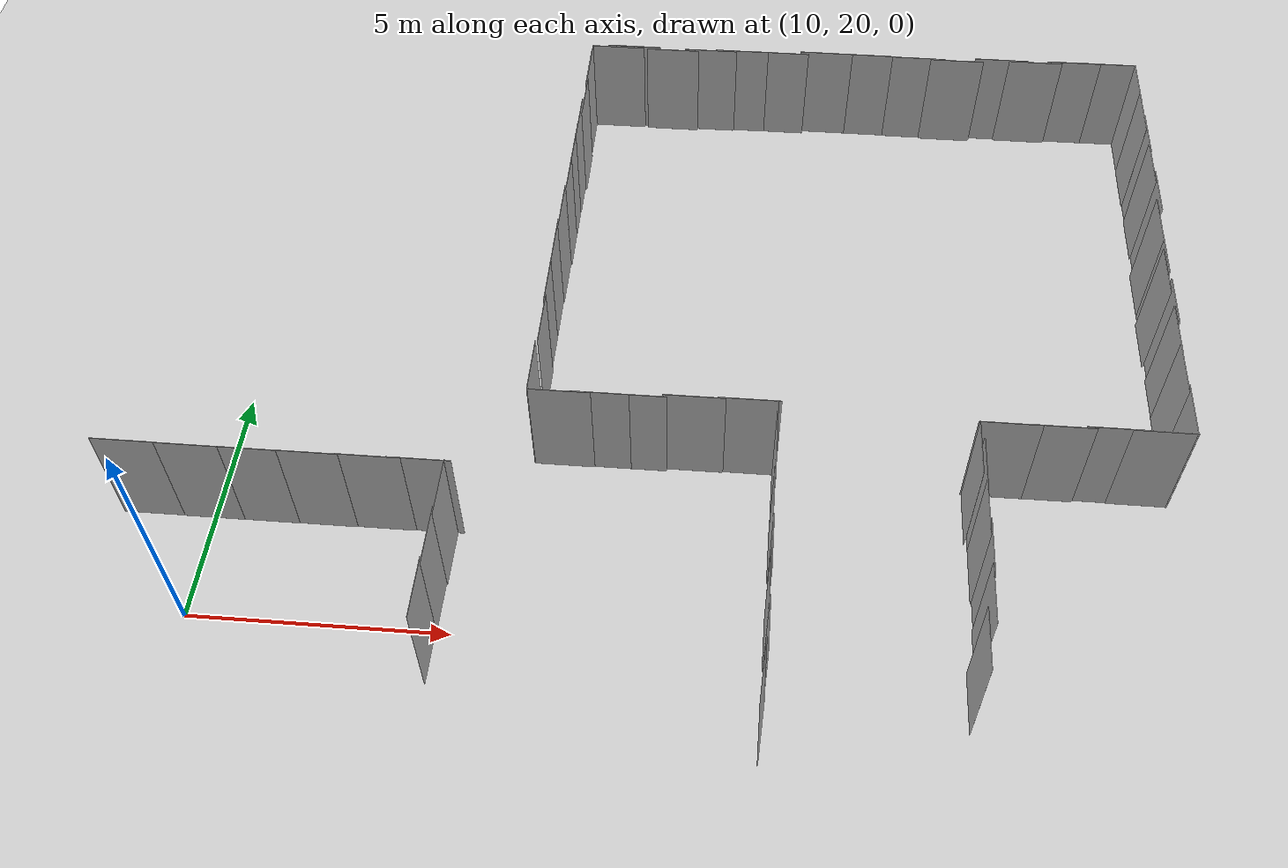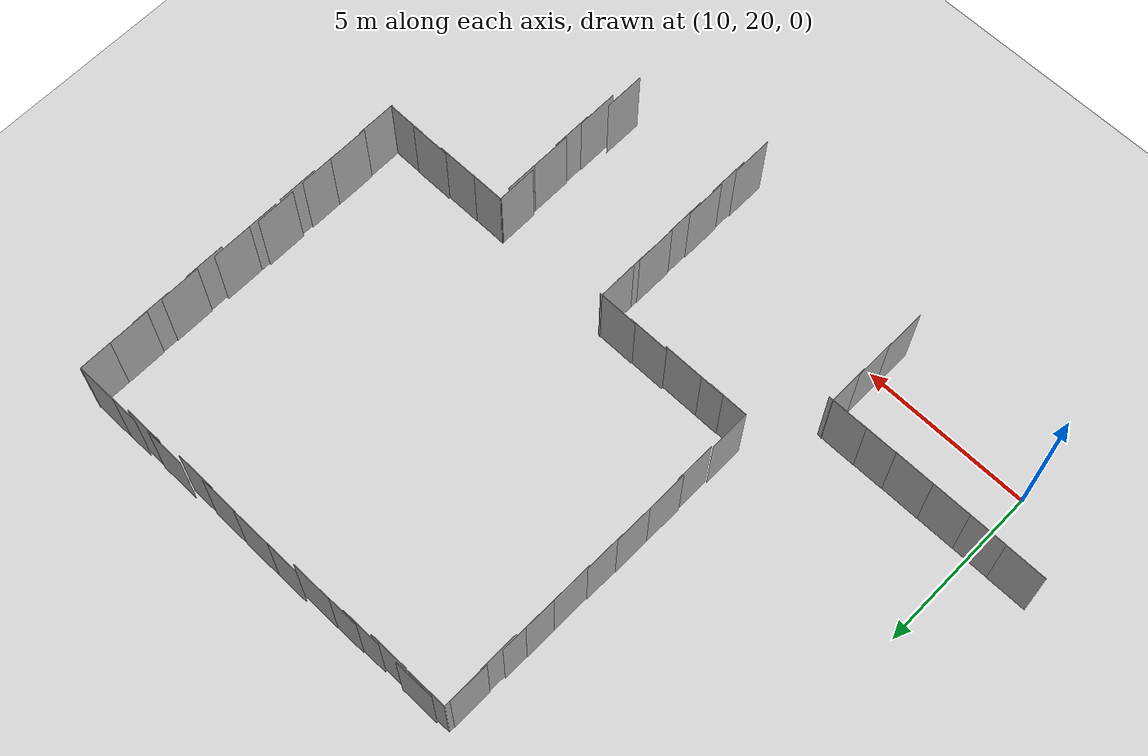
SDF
<sdf version="1.7">
 <world name="default">
  <model name="ground_plane">
   <static>1</static>
   <link name="link">
    <collision name="collision">
     <geometry><plane><normal>0 0 1</normal><size>100 100</size></plane></geometry>
     <surface><friction><ode><mu>100</mu><mu2>50</mu2></ode></friction></surface>
    </collision>
    <visual name="visual">
     <cast_shadows>0</cast_shadows>
     <geometry><plane><normal>0 0 1</normal><size>100 100</size></plane></geometry>
     <material>
      <script><uri>file://media/materials/scripts/gazebo.material</uri><name>Gazebo/Grey</name></script>
     </material>
    </visual>
   </link>
  </model>
  <model name="nist_maze_wall_240_clone_3_clone_5_clone_clone_0_clone_10_clone_1_clone_2_clone_1">
   <static>1</static>
   <link name="nist__maze_wall_240_link">
    <collision name="collision">
     <geometry>
      <mesh><uri>model://nist_maze_wall_240/meshes/nist_maze_wall_240.dae</uri><scale>1 1 1</scale></mesh>
     </geometry>
    </collision>
    <visual name="visual">
     <geometry>
      <mesh><uri>model://nist_maze_wall_240/meshes/nist_maze_wall_240.dae</uri><scale>1 1 1</scale></mesh>
     </geometry>
    </visual>
   </link>
   <pose>15.2926 19.5737 0 0 -0 1.57</pose>
  </model>
  <model name="nist_maze_wall_240_clone_3_clone_5_clone_clone_0_clone_10_clone_1_clone_2_clone_2">
   <static>1</static>
   <link name="nist__maze_wall_240_link">
    <collision name="collision">
     <geometry>
      <mesh><uri>model://nist_maze_wall_240/meshes/nist_maze_wall_240.dae</uri><scale>1 1 1</scale></mesh>
     </geometry>
    </collision>
    <visual name="visual">
     <geometry>
      <mesh><uri>model://nist_maze_wall_240/meshes/nist_maze_wall_240.dae</uri><scale>1 1 1</scale></mesh>
     </geometry>
    </visual>
   </link>
   <pose>15.3177 20.6411 0 0 -0 1.57</pose>
  </model>
  <model name="nist_maze_wall_240_clone_3_clone_5_clone_clone_0_clone_10_clone_1_clone_2_clone_3">
   <static>1</static>
   <link name="nist__maze_wall_240_link">
    <collision name="collision">
     <geometry>
      <mesh><uri>model://nist_maze_wall_240/meshes/nist_maze_wall_240.dae</uri><scale>1 1 1</scale></mesh>
     </geometry>
    </collision>
    <visual name="visual">
     <geometry>
      <mesh><uri>model://nist_maze_wall_240/meshes/nist_maze_wall_240.dae</uri><scale>1 1 1</scale></mesh>
     </geometry>
    </visual>
   </link>
   <pose>15.3419 21.6525 0 0 -0 1.57</pose>
  </model>
  <model name="nist_maze_wall_240_clone_3_clone_9_clone_clone_1">
   <static>1</static>
   <link name="nist__maze_wall_240_link">
    <collision name="collision">
     <geometry>
      <mesh><uri>model://nist_maze_wall_240/meshes/nist_maze_wall_240.dae</uri><scale>1 1 1</scale></mesh>
     </geometry>
    </collision>
    <visual name="visual">
     <geometry>
      <mesh><uri>model://nist_maze_wall_240/meshes/nist_maze_wall_240.dae</uri><scale>1 1 1</scale></mesh>
     </geometry>
    </visual>
   </link>
   <pose>14.2758 21.6142 0 0 -0 0</pose>
  </model>
  <model name="nist_maze_wall_240_clone_3_clone_9_clone_clone_2">
   <static>1</static>
   <link name="nist__maze_wall_240_link">
    <collision name="collision">
     <geometry>
      <mesh><uri>model://nist_maze_wall_240/meshes/nist_maze_wall_240.dae</uri><scale>1 1 1</scale></mesh>
     </geometry>
    </collision>
    <visual name="visual">
     <geometry>
      <mesh><uri>model://nist_maze_wall_240/meshes/nist_maze_wall_240.dae</uri><scale>1 1 1</scale></mesh>
     </geometry>
    </visual>
   </link>
   <pose>13.3441 21.6056 0 0 -0 0</pose>
  </model>
  <model name="nist_maze_wall_240_clone_3_clone_9_clone_clone_3">
   <static>1</static>
   <link name="nist__maze_wall_240_link">
    <collision name="collision">
     <geometry>
      <mesh><uri>model://nist_maze_wall_240/meshes/nist_maze_wall_240.dae</uri><scale>1 1 1</scale></mesh>
     </geometry>
    </collision>
    <visual name="visual">
     <geometry>
      <mesh><uri>model://nist_maze_wall_240/meshes/nist_maze_wall_240.dae</uri><scale>1 1 1</scale></mesh>
     </geometry>
    </visual>
   </link>
   <pose>12.1914 21.597 0 0 -0 0</pose>
  </model>
  <model name="nist_maze_wall_240_clone_3_clone_9_clone_clone_4">
   <static>1</static>
   <link name="nist__maze_wall_240_link">
    <collision name="collision">
     <geometry>
      <mesh><uri>model://nist_maze_wall_240/meshes/nist_maze_wall_240.dae</uri><scale>1 1 1</scale></mesh>
     </geometry>
    </collision>
    <visual name="visual">
     <geometry>
      <mesh><uri>model://nist_maze_wall_240/meshes/nist_maze_wall_240.dae</uri><scale>1 1 1</scale></mesh>
     </geometry>
    </visual>
   </link>
   <pose>11.0497 21.5927 0 0 -0 0</pose>
  </model>
  <model name="nist_maze_wall_240_clone_3_clone_9_clone_clone_5">
   <static>1</static>
   <link name="nist__maze_wall_240_link">
    <collision name="collision">
     <geometry>
      <mesh><uri>model://nist_maze_wall_240/meshes/nist_maze_wall_240.dae</uri><scale>1 1 1</scale></mesh>
     </geometry>
    </collision>
    <visual name="visual">
     <geometry>
      <mesh><uri>model://nist_maze_wall_240/meshes/nist_maze_wall_240.dae</uri><scale>1 1 1</scale></mesh>
     </geometry>
    </visual>
   </link>
   <pose>9.96574 21.5898 0 0 -0 0</pose>
  </model>
  <model name="nist_maze_wall_240_clone_3_clone_9_clone_clone_6">
   <static>1</static>
   <link name="nist__maze_wall_240_link">
    <collision name="collision">
     <geometry>
      <mesh><uri>model://nist_maze_wall_240/meshes/nist_maze_wall_240.dae</uri><scale>1 1 1</scale></mesh>
     </geometry>
    </collision>
    <visual name="visual">
     <geometry>
      <mesh><uri>model://nist_maze_wall_240/meshes/nist_maze_wall_240.dae</uri><scale>1 1 1</scale></mesh>
     </geometry>
    </visual>
   </link>
   <pose>8.76553 21.594 0 0 -0 0</pose>
  </model>
  <model name="nist_maze_wall_240_clone_3_clone_5_clone_clone_0_clone_13_clone_6_clone_3_clone_clone_3_clone_24">
   <static>1</static>
   <link name="nist__maze_wall_240_link">
    <collision name="collision">
     <geometry>
      <mesh><uri>model://nist_maze_wall_240/meshes/nist_maze_wall_240.dae</uri><scale>1 1 1</scale></mesh>
     </geometry>
    </collision>
    <visual name="visual">
     <geometry>
      <mesh><uri>model://nist_maze_wall_240/meshes/nist_maze_wall_240.dae</uri><scale>1 1 1</scale></mesh>
     </geometry>
    </visual>
   </link>
   <pose>21.3166 18.5017 0 0 -0 1.57</pose>
  </model>
  <model name="nist_maze_wall_240_clone_3_clone_5_clone_clone_0_clone_13_clone_6_clone_3_clone_clone_3_clone_25">
   <static>1</static>
   <link name="nist__maze_wall_240_link">
    <collision name="collision">
     <geometry>
      <mesh><uri>model://nist_maze_wall_240/meshes/nist_maze_wall_240.dae</uri><scale>1 1 1</scale></mesh>
     </geometry>
    </collision>
    <visual name="visual">
     <geometry>
      <mesh><uri>model://nist_maze_wall_240/meshes/nist_maze_wall_240.dae</uri><scale>1 1 1</scale></mesh>
     </geometry>
    </visual>
   </link>
   <pose>21.3514 19.361 0 0 -0 1.57</pose>
  </model>
  <model name="nist_maze_wall_240_clone_3_clone_5_clone_clone_0_clone_13_clone_6_clone_3_clone_clone_3_clone_26">
   <static>1</static>
   <link name="nist__maze_wall_240_link">
    <collision name="collision">
     <geometry>
      <mesh><uri>model://nist_maze_wall_240/meshes/nist_maze_wall_240.dae</uri><scale>1 1 1</scale></mesh>
     </geometry>
    </collision>
    <visual name="visual">
     <geometry>
      <mesh><uri>model://nist_maze_wall_240/meshes/nist_maze_wall_240.dae</uri><scale>1 1 1</scale></mesh>
     </geometry>
    </visual>
   </link>
   <pose>21.3269 20.2453 0 0 -0 1.57</pose>
  </model>
  <model name="nist_maze_wall_240_clone_3_clone_5_clone_clone_0_clone_13_clone_6_clone_3_clone_clone_3_clone_27">
   <static>1</static>
   <link name="nist__maze_wall_240_link">
    <collision name="collision">
     <geometry>
      <mesh><uri>model://nist_maze_wall_240/meshes/nist_maze_wall_240.dae</uri><scale>1 1 1</scale></mesh>
     </geometry>
    </collision>
    <visual name="visual">
     <geometry>
      <mesh><uri>model://nist_maze_wall_240/meshes/nist_maze_wall_240.dae</uri><scale>1 1 1</scale></mesh>
     </geometry>
    </visual>
   </link>
   <pose>21.3523 20.9992 0 0 -0 1.57</pose>
  </model>
  <model name="nist_maze_wall_240_clone_3_clone_5_clone_clone_0_clone_13_clone_6_clone_3_clone_clone_3_clone_28">
   <static>1</static>
   <link name="nist__maze_wall_240_link">
    <collision name="collision">
     <geometry>
      <mesh><uri>model://nist_maze_wall_240/meshes/nist_maze_wall_240.dae</uri><scale>1 1 1</scale></mesh>
     </geometry>
    </collision>
    <visual name="visual">
     <geometry>
      <mesh><uri>model://nist_maze_wall_240/meshes/nist_maze_wall_240.dae</uri><scale>1 1 1</scale></mesh>
     </geometry>
    </visual>
   </link>
   <pose>21.3363 22.0957 0 0 -0 1.57</pose>
  </model>
  <model name="nist_maze_wall_240_clone_3_clone_5_clone_clone_0_clone_13_clone_6_clone_3_clone_clone_3_clone_29">
   <static>1</static>
   <link name="nist__maze_wall_240_link">
    <collision name="collision">
     <geometry>
      <mesh><uri>model://nist_maze_wall_240/meshes/nist_maze_wall_240.dae</uri><scale>1 1 1</scale></mesh>
     </geometry>
    </collision>
    <visual name="visual">
     <geometry>
      <mesh><uri>model://nist_maze_wall_240/meshes/nist_maze_wall_240.dae</uri><scale>1 1 1</scale></mesh>
     </geometry>
    </visual>
   </link>
   <pose>21.3496 22.9187 0 0 -0 1.57</pose>
  </model>
  <model name="nist_maze_wall_240_clone_3_clone_5_clone_clone_0_clone_13_clone_6_clone_3_clone_clone_3_clone_0_clone_29">
   <static>1</static>
   <link name="nist__maze_wall_240_link">
    <collision name="collision">
     <geometry>
      <mesh><uri>model://nist_maze_wall_240/meshes/nist_maze_wall_240.dae</uri><scale>1 1 1</scale></mesh>
     </geometry>
    </collision>
    <visual name="visual">
     <geometry>
      <mesh><uri>model://nist_maze_wall_240/meshes/nist_maze_wall_240.dae</uri><scale>1 1 1</scale></mesh>
     </geometry>
    </visual>
   </link>
   <pose>25.0086 19.3708 0 0 -0 1.57</pose>
  </model>
  <model name="nist_maze_wall_240_clone_3_clone_5_clone_clone_0_clone_13_clone_6_clone_3_clone_clone_3_clone_0_clone_30">
   <static>1</static>
   <link name="nist__maze_wall_240_link">
    <collision name="collision">
     <geometry>
      <mesh><uri>model://nist_maze_wall_240/meshes/nist_maze_wall_240.dae</uri><scale>1 1 1</scale></mesh>
     </geometry>
    </collision>
    <visual name="visual">
     <geometry>
      <mesh><uri>model://nist_maze_wall_240/meshes/nist_maze_wall_240.dae</uri><scale>1 1 1</scale></mesh>
     </geometry>
    </visual>
   </link>
   <pose>25.1456 20.2466 0 0 -0 1.57</pose>
  </model>
  <model name="nist_maze_wall_240_clone_3_clone_5_clone_clone_0_clone_13_clone_6_clone_3_clone_clone_3_clone_0_clone_31">
   <static>1</static>
   <link name="nist__maze_wall_240_link">
    <collision name="collision">
     <geometry>
      <mesh><uri>model://nist_maze_wall_240/meshes/nist_maze_wall_240.dae</uri><scale>1 1 1</scale></mesh>
     </geometry>
    </collision>
    <visual name="visual">
     <geometry>
      <mesh><uri>model://nist_maze_wall_240/meshes/nist_maze_wall_240.dae</uri><scale>1 1 1</scale></mesh>
     </geometry>
    </visual>
   </link>
   <pose>25.1681 21.1717 0 0 -0 1.57</pose>
  </model>
  <model name="nist_maze_wall_240_clone_3_clone_5_clone_clone_0_clone_13_clone_6_clone_3_clone_clone_3_clone_0_clone_32">
   <static>1</static>
   <link name="nist__maze_wall_240_link">
    <collision name="collision">
     <geometry>
      <mesh><uri>model://nist_maze_wall_240/meshes/nist_maze_wall_240.dae</uri><scale>1 1 1</scale></mesh>
     </geometry>
    </collision>
    <visual name="visual">
     <geometry>
      <mesh><uri>model://nist_maze_wall_240/meshes/nist_maze_wall_240.dae</uri><scale>1 1 1</scale></mesh>
     </geometry>
    </visual>
   </link>
   <pose>25.1414 21.9977 0 0 -0 1.57</pose>
  </model>
  <model name="nist_maze_wall_240_clone_3_clone_5_clone_clone_0_clone_13_clone_6_clone_3_clone_clone_3_clone_0_clone_33">
   <static>1</static>
   <link name="nist__maze_wall_240_link">
    <collision name="collision">
     <geometry>
      <mesh><uri>model://nist_maze_wall_240/meshes/nist_maze_wall_240.dae</uri><scale>1 1 1</scale></mesh>
     </geometry>
    </collision>
    <visual name="visual">
     <geometry>
      <mesh><uri>model://nist_maze_wall_240/meshes/nist_maze_wall_240.dae</uri><scale>1 1 1</scale></mesh>
     </geometry>
    </visual>
   </link>
   <pose>25.1446 22.9318 0 0 -0 1.57</pose>
  </model>
  <model name="nist_maze_wall_240_clone_3_clone_5_clone_clone_0_clone_13_clone_6_clone_3_clone_clone_3_clone_0_clone_34">
   <static>1</static>
   <link name="nist__maze_wall_240_link">
    <collision name="collision">
     <geometry>
      <mesh><uri>model://nist_maze_wall_240/meshes/nist_maze_wall_240.dae</uri><scale>1 1 1</scale></mesh>
     </geometry>
    </collision>
    <visual name="visual">
     <geometry>
      <mesh><uri>model://nist_maze_wall_240/meshes/nist_maze_wall_240.dae</uri><scale>1 1 1</scale></mesh>
     </geometry>
    </visual>
   </link>
   <pose>21.3445 23.503 0 0 -0 1.57</pose>
  </model>
  <model name="nist_maze_wall_240_clone_3_clone_5_clone_clone_0_clone_13_clone_6_clone_3_clone_clone_3_clone_29_clone">
   <static>1</static>
   <link name="nist__maze_wall_240_link">
    <collision name="collision">
     <geometry>
      <mesh><uri>model://nist_maze_wall_240/meshes/nist_maze_wall_240.dae</uri><scale>1 1 1</scale></mesh>
     </geometry>
    </collision>
    <visual name="visual">
     <geometry>
      <mesh><uri>model://nist_maze_wall_240/meshes/nist_maze_wall_240.dae</uri><scale>1 1 1</scale></mesh>
     </geometry>
    </visual>
   </link>
   <pose>25.0818 23.3065 0 0 -0 1.57</pose>
  </model>
  <model name="nist_maze_wall_240_clone_3_clone_9_clone_clone_2_clone">
   <static>1</static>
   <link name="nist__maze_wall_240_link">
    <collision name="collision">
     <geometry>
      <mesh><uri>model://nist_maze_wall_240/meshes/nist_maze_wall_240.dae</uri><scale>1 1 1</scale></mesh>
     </geometry>
    </collision>
    <visual name="visual">
     <geometry>
      <mesh><uri>model://nist_maze_wall_240/meshes/nist_maze_wall_240.dae</uri><scale>1 1 1</scale></mesh>
     </geometry>
    </visual>
   </link>
   <pose>20.2114 23.4638 0 0 -0 0</pose>
  </model>
  <model name="nist_maze_wall_240_clone_3_clone_9_clone_clone_2_clone_0">
   <static>1</static>
   <link name="nist__maze_wall_240_link">
    <collision name="collision">
     <geometry>
      <mesh><uri>model://nist_maze_wall_240/meshes/nist_maze_wall_240.dae</uri><scale>1 1 1</scale></mesh>
     </geometry>
    </collision>
    <visual name="visual">
     <geometry>
      <mesh><uri>model://nist_maze_wall_240/meshes/nist_maze_wall_240.dae</uri><scale>1 1 1</scale></mesh>
     </geometry>
    </visual>
   </link>
   <pose>19.1648 23.4464 0 0 -0 0</pose>
  </model>
  <model name="nist_maze_wall_240_clone_3_clone_9_clone_clone_2_clone_1">
   <static>1</static>
   <link name="nist__maze_wall_240_link">
    <collision name="collision">
     <geometry>
      <mesh><uri>model://nist_maze_wall_240/meshes/nist_maze_wall_240.dae</uri><scale>1 1 1</scale></mesh>
     </geometry>
    </collision>
    <visual name="visual">
     <geometry>
      <mesh><uri>model://nist_maze_wall_240/meshes/nist_maze_wall_240.dae</uri><scale>1 1 1</scale></mesh>
     </geometry>
    </visual>
   </link>
   <pose>18.0465 23.3916 0 0 -0 0</pose>
  </model>
  <model name="nist_maze_wall_240_clone_3_clone_9_clone_clone_2_clone_2">
   <static>1</static>
   <link name="nist__maze_wall_240_link">
    <collision name="collision">
     <geometry>
      <mesh><uri>model://nist_maze_wall_240/meshes/nist_maze_wall_240.dae</uri><scale>1 1 1</scale></mesh>
     </geometry>
    </collision>
    <visual name="visual">
     <geometry>
      <mesh><uri>model://nist_maze_wall_240/meshes/nist_maze_wall_240.dae</uri><scale>1 1 1</scale></mesh>
     </geometry>
    </visual>
   </link>
   <pose>17.3475 23.391 0 0 -0 0</pose>
  </model>
  <model name="nist_maze_wall_240_clone_3_clone_9_clone_clone_2_clone_3">
   <static>1</static>
   <link name="nist__maze_wall_240_link">
    <collision name="collision">
     <geometry>
      <mesh><uri>model://nist_maze_wall_240/meshes/nist_maze_wall_240.dae</uri><scale>1 1 1</scale></mesh>
     </geometry>
    </collision>
    <visual name="visual">
     <geometry>
      <mesh><uri>model://nist_maze_wall_240/meshes/nist_maze_wall_240.dae</uri><scale>1 1 1</scale></mesh>
     </geometry>
    </visual>
   </link>
   <pose>16.6119 23.3768 0 0 -0 0</pose>
  </model>
  <model name="nist_maze_wall_240_clone_3_clone_9_clone_clone_2_clone_clone">
   <static>1</static>
   <link name="nist__maze_wall_240_link">
    <collision name="collision">
     <geometry>
      <mesh><uri>model://nist_maze_wall_240/meshes/nist_maze_wall_240.dae</uri><scale>1 1 1</scale></mesh>
     </geometry>
    </collision>
    <visual name="visual">
     <geometry>
      <mesh><uri>model://nist_maze_wall_240/meshes/nist_maze_wall_240.dae</uri><scale>1 1 1</scale></mesh>
     </geometry>
    </visual>
   </link>
   <pose>25.0534 23.2846 0 0 -0 0</pose>
  </model>
  <model name="nist_maze_wall_240_clone_3_clone_9_clone_clone_2_clone_clone_0">
   <static>1</static>
   <link name="nist__maze_wall_240_link">
    <collision name="collision">
     <geometry>
      <mesh><uri>model://nist_maze_wall_240/meshes/nist_maze_wall_240.dae</uri><scale>1 1 1</scale></mesh>
     </geometry>
    </collision>
    <visual name="visual">
     <geometry>
      <mesh><uri>model://nist_maze_wall_240/meshes/nist_maze_wall_240.dae</uri><scale>1 1 1</scale></mesh>
     </geometry>
    </visual>
   </link>
   <pose>26.0408 23.2896 0 0 -0 0</pose>
  </model>
  <model name="nist_maze_wall_240_clone_3_clone_9_clone_clone_2_clone_clone_1">
   <static>1</static>
   <link name="nist__maze_wall_240_link">
    <collision name="collision">
     <geometry>
      <mesh><uri>model://nist_maze_wall_240/meshes/nist_maze_wall_240.dae</uri><scale>1 1 1</scale></mesh>
     </geometry>
    </collision>
    <visual name="visual">
     <geometry>
      <mesh><uri>model://nist_maze_wall_240/meshes/nist_maze_wall_240.dae</uri><scale>1 1 1</scale></mesh>
     </geometry>
    </visual>
   </link>
   <pose>27.0386 23.3221 0 0 -0 0</pose>
  </model>
  <model name="nist_maze_wall_240_clone_3_clone_9_clone_clone_2_clone_clone_2">
   <static>1</static>
   <link name="nist__maze_wall_240_link">
    <collision name="collision">
     <geometry>
      <mesh><uri>model://nist_maze_wall_240/meshes/nist_maze_wall_240.dae</uri><scale>1 1 1</scale></mesh>
     </geometry>
    </collision>
    <visual name="visual">
     <geometry>
      <mesh><uri>model://nist_maze_wall_240/meshes/nist_maze_wall_240.dae</uri><scale>1 1 1</scale></mesh>
     </geometry>
    </visual>
   </link>
   <pose>27.8874 23.3103 0 0 -0 0</pose>
  </model>
  <model name="nist_maze_wall_240_clone_3_clone_5_clone_clone_0_clone_13_clone_6_clone_3_clone_clone_3_clone_0_clone_33_clone">
   <static>1</static>
   <link name="nist__maze_wall_240_link">
    <collision name="collision">
     <geometry>
      <mesh><uri>model://nist_maze_wall_240/meshes/nist_maze_wall_240.dae</uri><scale>1 1 1</scale></mesh>
     </geometry>
    </collision>
    <visual name="visual">
     <geometry>
      <mesh><uri>model://nist_maze_wall_240/meshes/nist_maze_wall_240.dae</uri><scale>1 1 1</scale></mesh>
     </geometry>
    </visual>
   </link>
   <pose>29.0632 24.4699 0 0 -0 1.57</pose>
  </model>
  <model name="nist_maze_wall_240_clone_3_clone_5_clone_clone_0_clone_13_clone_6_clone_3_clone_clone_3_clone_0_clone_33_clone_0">
   <static>1</static>
   <link name="nist__maze_wall_240_link">
    <collision name="collision">
     <geometry>
      <mesh><uri>model://nist_maze_wall_240/meshes/nist_maze_wall_240.dae</uri><scale>1 1 1</scale></mesh>
     </geometry>
    </collision>
    <visual name="visual">
     <geometry>
      <mesh><uri>model://nist_maze_wall_240/meshes/nist_maze_wall_240.dae</uri><scale>1 1 1</scale></mesh>
     </geometry>
    </visual>
   </link>
   <pose>29.0393 25.4969 0 0 -0 1.57</pose>
  </model>
  <model name="nist_maze_wall_240_clone_3_clone_5_clone_clone_0_clone_13_clone_6_clone_3_clone_clone_3_clone_0_clone_33_clone_1">
   <static>1</static>
   <link name="nist__maze_wall_240_link">
    <collision name="collision">
     <geometry>
      <mesh><uri>model://nist_maze_wall_240/meshes/nist_maze_wall_240.dae</uri><scale>1 1 1</scale></mesh>
     </geometry>
    </collision>
    <visual name="visual">
     <geometry>
      <mesh><uri>model://nist_maze_wall_240/meshes/nist_maze_wall_240.dae</uri><scale>1 1 1</scale></mesh>
     </geometry>
    </visual>
   </link>
   <pose>29.0459 26.475 0 0 -0 1.57</pose>
  </model>
  <model name="nist_maze_wall_240_clone_3_clone_5_clone_clone_0_clone_13_clone_6_clone_3_clone_clone_3_clone_0_clone_33_clone_2">
   <static>1</static>
   <link name="nist__maze_wall_240_link">
    <collision name="collision">
     <geometry>
      <mesh><uri>model://nist_maze_wall_240/meshes/nist_maze_wall_240.dae</uri><scale>1 1 1</scale></mesh>
     </geometry>
    </collision>
    <visual name="visual">
     <geometry>
      <mesh><uri>model://nist_maze_wall_240/meshes/nist_maze_wall_240.dae</uri><scale>1 1 1</scale></mesh>
     </geometry>
    </visual>
   </link>
   <pose>29.0882 27.2129 0 0 -0 1.57</pose>
  </model>
  <model name="nist_maze_wall_240_clone_3_clone_5_clone_clone_0_clone_13_clone_6_clone_3_clone_clone_3_clone_0_clone_33_clone_3">
   <static>1</static>
   <link name="nist__maze_wall_240_link">
    <collision name="collision">
     <geometry>
      <mesh><uri>model://nist_maze_wall_240/meshes/nist_maze_wall_240.dae</uri><scale>1 1 1</scale></mesh>
     </geometry>
    </collision>
    <visual name="visual">
     <geometry>
      <mesh><uri>model://nist_maze_wall_240/meshes/nist_maze_wall_240.dae</uri><scale>1 1 1</scale></mesh>
     </geometry>
    </visual>
   </link>
   <pose>29.0304 28.024 0 0 -0 1.57</pose>
  </model>
  <model name="nist_maze_wall_240_clone_3_clone_5_clone_clone_0_clone_13_clone_6_clone_3_clone_clone_3_clone_0_clone_33_clone_4">
   <static>1</static>
   <link name="nist__maze_wall_240_link">
    <collision name="collision">
     <geometry>
      <mesh><uri>model://nist_maze_wall_240/meshes/nist_maze_wall_240.dae</uri><scale>1 1 1</scale></mesh>
     </geometry>
    </collision>
    <visual name="visual">
     <geometry>
      <mesh><uri>model://nist_maze_wall_240/meshes/nist_maze_wall_240.dae</uri><scale>1 1 1</scale></mesh>
     </geometry>
    </visual>
   </link>
   <pose>29.0759 28.5637 0 0 -0 1.57</pose>
  </model>
  <model name="nist_maze_wall_240_clone_3_clone_5_clone_clone_0_clone_13_clone_6_clone_3_clone_clone_3_clone_0_clone_33_clone_5">
   <static>1</static>
   <link name="nist__maze_wall_240_link">
    <collision name="collision">
     <geometry>
      <mesh><uri>model://nist_maze_wall_240/meshes/nist_maze_wall_240.dae</uri><scale>1 1 1</scale></mesh>
     </geometry>
    </collision>
    <visual name="visual">
     <geometry>
      <mesh><uri>model://nist_maze_wall_240/meshes/nist_maze_wall_240.dae</uri><scale>1 1 1</scale></mesh>
     </geometry>
    </visual>
   </link>
   <pose>29.0762 29.4673 0 0 -0 1.57</pose>
  </model>
  <model name="nist_maze_wall_240_clone_3_clone_5_clone_clone_0_clone_13_clone_6_clone_3_clone_clone_3_clone_0_clone_33_clone_6">
   <static>1</static>
   <link name="nist__maze_wall_240_link">
    <collision name="collision">
     <geometry>
      <mesh><uri>model://nist_maze_wall_240/meshes/nist_maze_wall_240.dae</uri><scale>1 1 1</scale></mesh>
     </geometry>
    </collision>
    <visual name="visual">
     <geometry>
      <mesh><uri>model://nist_maze_wall_240/meshes/nist_maze_wall_240.dae</uri><scale>1 1 1</scale></mesh>
     </geometry>
    </visual>
   </link>
   <pose>29.1545 30.3459 0 0 -0 1.57</pose>
  </model>
  <model name="nist_maze_wall_240_clone_3_clone_5_clone_clone_0_clone_13_clone_6_clone_3_clone_clone_3_clone_0_clone_33_clone_7">
   <static>1</static>
   <link name="nist__maze_wall_240_link">
    <collision name="collision">
     <geometry>
      <mesh><uri>model://nist_maze_wall_240/meshes/nist_maze_wall_240.dae</uri><scale>1 1 1</scale></mesh>
     </geometry>
    </collision>
    <visual name="visual">
     <geometry>
      <mesh><uri>model://nist_maze_wall_240/meshes/nist_maze_wall_240.dae</uri><scale>1 1 1</scale></mesh>
     </geometry>
    </visual>
   </link>
   <pose>29.1283 31.1875 0 0 -0 1.57</pose>
  </model>
  <model name="nist_maze_wall_240_clone_3_clone_5_clone_clone_0_clone_13_clone_6_clone_3_clone_clone_3_clone_0_clone_33_clone_8">
   <static>1</static>
   <link name="nist__maze_wall_240_link">
    <collision name="collision">
     <geometry>
      <mesh><uri>model://nist_maze_wall_240/meshes/nist_maze_wall_240.dae</uri><scale>1 1 1</scale></mesh>
     </geometry>
    </collision>
    <visual name="visual">
     <geometry>
      <mesh><uri>model://nist_maze_wall_240/meshes/nist_maze_wall_240.dae</uri><scale>1 1 1</scale></mesh>
     </geometry>
    </visual>
   </link>
   <pose>29.1465 32.1184 0 0 -0 1.57</pose>
  </model>
  <model name="nist_maze_wall_240_clone_3_clone_5_clone_clone_0_clone_13_clone_6_clone_3_clone_clone_3_clone_0_clone_33_clone_9">
   <static>1</static>
   <link name="nist__maze_wall_240_link">
    <collision name="collision">
     <geometry>
      <mesh><uri>model://nist_maze_wall_240/meshes/nist_maze_wall_240.dae</uri><scale>1 1 1</scale></mesh>
     </geometry>
    </collision>
    <visual name="visual">
     <geometry>
      <mesh><uri>model://nist_maze_wall_240/meshes/nist_maze_wall_240.dae</uri><scale>1 1 1</scale></mesh>
     </geometry>
    </visual>
   </link>
   <pose>29.131 32.8545 0 0 -0 1.57</pose>
  </model>
  <model name="nist_maze_wall_240_clone_3_clone_5_clone_clone_0_clone_13_clone_6_clone_3_clone_clone_3_clone_0_clone_33_clone_10">
   <static>1</static>
   <link name="nist__maze_wall_240_link">
    <collision name="collision">
     <geometry>
      <mesh><uri>model://nist_maze_wall_240/meshes/nist_maze_wall_240.dae</uri><scale>1 1 1</scale></mesh>
     </geometry>
    </collision>
    <visual name="visual">
     <geometry>
      <mesh><uri>model://nist_maze_wall_240/meshes/nist_maze_wall_240.dae</uri><scale>1 1 1</scale></mesh>
     </geometry>
    </visual>
   </link>
   <pose>29.1368 33.8279 0 0 -0 1.57</pose>
  </model>
  <model name="nist_maze_wall_240_clone_3_clone_5_clone_clone_0_clone_13_clone_6_clone_3_clone_clone_3_clone_0_clone_33_clone_11">
   <static>1</static>
   <link name="nist__maze_wall_240_link">
    <collision name="collision">
     <geometry>
      <mesh><uri>model://nist_maze_wall_240/meshes/nist_maze_wall_240.dae</uri><scale>1 1 1</scale></mesh>
     </geometry>
    </collision>
    <visual name="visual">
     <geometry>
      <mesh><uri>model://nist_maze_wall_240/meshes/nist_maze_wall_240.dae</uri><scale>1 1 1</scale></mesh>
     </geometry>
    </visual>
   </link>
   <pose>16.6069 24.5638 0 0 -0 1.57</pose>
  </model>
  <model name="nist_maze_wall_240_clone_3_clone_5_clone_clone_0_clone_13_clone_6_clone_3_clone_clone_3_clone_0_clone_33_clone_12">
   <static>1</static>
   <link name="nist__maze_wall_240_link">
    <collision name="collision">
     <geometry>
      <mesh><uri>model://nist_maze_wall_240/meshes/nist_maze_wall_240.dae</uri><scale>1 1 1</scale></mesh>
     </geometry>
    </collision>
    <visual name="visual">
     <geometry>
      <mesh><uri>model://nist_maze_wall_240/meshes/nist_maze_wall_240.dae</uri><scale>1 1 1</scale></mesh>
     </geometry>
    </visual>
   </link>
   <pose>16.6487 25.7636 0 0 -0 1.57</pose>
  </model>
  <model name="nist_maze_wall_240_clone_3_clone_5_clone_clone_0_clone_13_clone_6_clone_3_clone_clone_3_clone_0_clone_33_clone_13">
   <static>1</static>
   <link name="nist__maze_wall_240_link">
    <collision name="collision">
     <geometry>
      <mesh><uri>model://nist_maze_wall_240/meshes/nist_maze_wall_240.dae</uri><scale>1 1 1</scale></mesh>
     </geometry>
    </collision>
    <visual name="visual">
     <geometry>
      <mesh><uri>model://nist_maze_wall_240/meshes/nist_maze_wall_240.dae</uri><scale>1 1 1</scale></mesh>
     </geometry>
    </visual>
   </link>
   <pose>16.626 26.7719 0 0 -0 1.57</pose>
  </model>
  <model name="nist_maze_wall_240_clone_3_clone_5_clone_clone_0_clone_13_clone_6_clone_3_clone_clone_3_clone_0_clone_33_clone_14">
   <static>1</static>
   <link name="nist__maze_wall_240_link">
    <collision name="collision">
     <geometry>
      <mesh><uri>model://nist_maze_wall_240/meshes/nist_maze_wall_240.dae</uri><scale>1 1 1</scale></mesh>
     </geometry>
    </collision>
    <visual name="visual">
     <geometry>
      <mesh><uri>model://nist_maze_wall_240/meshes/nist_maze_wall_240.dae</uri><scale>1 1 1</scale></mesh>
     </geometry>
    </visual>
   </link>
   <pose>16.6273 27.8794 0 0 -0 1.57</pose>
  </model>
  <model name="nist_maze_wall_240_clone_3_clone_5_clone_clone_0_clone_13_clone_6_clone_3_clone_clone_3_clone_0_clone_33_clone_15">
   <static>1</static>
   <link name="nist__maze_wall_240_link">
    <collision name="collision">
     <geometry>
      <mesh><uri>model://nist_maze_wall_240/meshes/nist_maze_wall_240.dae</uri><scale>1 1 1</scale></mesh>
     </geometry>
    </collision>
    <visual name="visual">
     <geometry>
      <mesh><uri>model://nist_maze_wall_240/meshes/nist_maze_wall_240.dae</uri><scale>1 1 1</scale></mesh>
     </geometry>
    </visual>
   </link>
   <pose>16.6471 28.8787 0 0 -0 1.57</pose>
  </model>
  <model name="nist_maze_wall_240_clone_3_clone_5_clone_clone_0_clone_13_clone_6_clone_3_clone_clone_3_clone_0_clone_33_clone_16">
   <static>1</static>
   <link name="nist__maze_wall_240_link">
    <collision name="collision">
     <geometry>
      <mesh><uri>model://nist_maze_wall_240/meshes/nist_maze_wall_240.dae</uri><scale>1 1 1</scale></mesh>
     </geometry>
    </collision>
    <visual name="visual">
     <geometry>
      <mesh><uri>model://nist_maze_wall_240/meshes/nist_maze_wall_240.dae</uri><scale>1 1 1</scale></mesh>
     </geometry>
    </visual>
   </link>
   <pose>16.6752 29.9908 0 0 -0 1.57</pose>
  </model>
  <model name="nist_maze_wall_240_clone_3_clone_5_clone_clone_0_clone_13_clone_6_clone_3_clone_clone_3_clone_0_clone_33_clone_17">
   <static>1</static>
   <link name="nist__maze_wall_240_link">
    <collision name="collision">
     <geometry>
      <mesh><uri>model://nist_maze_wall_240/meshes/nist_maze_wall_240.dae</uri><scale>1 1 1</scale></mesh>
     </geometry>
    </collision>
    <visual name="visual">
     <geometry>
      <mesh><uri>model://nist_maze_wall_240/meshes/nist_maze_wall_240.dae</uri><scale>1 1 1</scale></mesh>
     </geometry>
    </visual>
   </link>
   <pose>16.6783 30.9292 0 0 -0 1.57</pose>
  </model>
  <model name="nist_maze_wall_240_clone_3_clone_5_clone_clone_0_clone_13_clone_6_clone_3_clone_clone_3_clone_0_clone_33_clone_18">
   <static>1</static>
   <link name="nist__maze_wall_240_link">
    <collision name="collision">
     <geometry>
      <mesh><uri>model://nist_maze_wall_240/meshes/nist_maze_wall_240.dae</uri><scale>1 1 1</scale></mesh>
     </geometry>
    </collision>
    <visual name="visual">
     <geometry>
      <mesh><uri>model://nist_maze_wall_240/meshes/nist_maze_wall_240.dae</uri><scale>1 1 1</scale></mesh>
     </geometry>
    </visual>
   </link>
   <pose>16.6866 31.6759 0 0 -0 1.57</pose>
  </model>
  <model name="nist_maze_wall_240_clone_3_clone_5_clone_clone_0_clone_13_clone_6_clone_3_clone_clone_3_clone_0_clone_33_clone_19">
   <static>1</static>
   <link name="nist__maze_wall_240_link">
    <collision name="collision">
     <geometry>
      <mesh><uri>model://nist_maze_wall_240/meshes/nist_maze_wall_240.dae</uri><scale>1 1 1</scale></mesh>
     </geometry>
    </collision>
    <visual name="visual">
     <geometry>
      <mesh><uri>model://nist_maze_wall_240/meshes/nist_maze_wall_240.dae</uri><scale>1 1 1</scale></mesh>
     </geometry>
    </visual>
   </link>
   <pose>16.7308 32.3721 0 0 -0 1.57</pose>
  </model>
  <model name="nist_maze_wall_240_clone_3_clone_9_clone_clone_2_clone_clone_0_clone">
   <static>1</static>
   <link name="nist__maze_wall_240_link">
    <collision name="collision">
     <geometry>
      <mesh><uri>model://nist_maze_wall_240/meshes/nist_maze_wall_240.dae</uri><scale>1 1 1</scale></mesh>
     </geometry>
    </collision>
    <visual name="visual">
     <geometry>
      <mesh><uri>model://nist_maze_wall_240/meshes/nist_maze_wall_240.dae</uri><scale>1 1 1</scale></mesh>
     </geometry>
    </visual>
   </link>
   <pose>27.9535 33.8048 0 0 -0 0</pose>
  </model>
  <model name="nist_maze_wall_240_clone_3_clone_9_clone_clone_2_clone_clone_0_clone_0">
   <static>1</static>
   <link name="nist__maze_wall_240_link">
    <collision name="collision">
     <geometry>
      <mesh><uri>model://nist_maze_wall_240/meshes/nist_maze_wall_240.dae</uri><scale>1 1 1</scale></mesh>
     </geometry>
    </collision>
    <visual name="visual">
     <geometry>
      <mesh><uri>model://nist_maze_wall_240/meshes/nist_maze_wall_240.dae</uri><scale>1 1 1</scale></mesh>
     </geometry>
    </visual>
   </link>
   <pose>27.1678 33.7968 0 0 -0 0</pose>
  </model>
  <model name="nist_maze_wall_240_clone_3_clone_9_clone_clone_2_clone_clone_0_clone_1">
   <static>1</static>
   <link name="nist__maze_wall_240_link">
    <collision name="collision">
     <geometry>
      <mesh><uri>model://nist_maze_wall_240/meshes/nist_maze_wall_240.dae</uri><scale>1 1 1</scale></mesh>
     </geometry>
    </collision>
    <visual name="visual">
     <geometry>
      <mesh><uri>model://nist_maze_wall_240/meshes/nist_maze_wall_240.dae</uri><scale>1 1 1</scale></mesh>
     </geometry>
    </visual>
   </link>
   <pose>26.2846 33.7376 0 0 -0 0</pose>
  </model>
  <model name="nist_maze_wall_240_clone_3_clone_9_clone_clone_2_clone_clone_0_clone_2">
   <static>1</static>
   <link name="nist__maze_wall_240_link">
    <collision name="collision">
     <geometry>
      <mesh><uri>model://nist_maze_wall_240/meshes/nist_maze_wall_240.dae</uri><scale>1 1 1</scale></mesh>
     </geometry>
    </collision>
    <visual name="visual">
     <geometry>
      <mesh><uri>model://nist_maze_wall_240/meshes/nist_maze_wall_240.dae</uri><scale>1 1 1</scale></mesh>
     </geometry>
    </visual>
   </link>
   <pose>25.5095 33.767 0 0 -0 0</pose>
  </model>
  <model name="nist_maze_wall_240_clone_3_clone_9_clone_clone_2_clone_clone_0_clone_3">
   <static>1</static>
   <link name="nist__maze_wall_240_link">
    <collision name="collision">
     <geometry>
      <mesh><uri>model://nist_maze_wall_240/meshes/nist_maze_wall_240.dae</uri><scale>1 1 1</scale></mesh>
     </geometry>
    </collision>
    <visual name="visual">
     <geometry>
      <mesh><uri>model://nist_maze_wall_240/meshes/nist_maze_wall_240.dae</uri><scale>1 1 1</scale></mesh>
     </geometry>
    </visual>
   </link>
   <pose>24.4964 33.6582 0 0 -0 0</pose>
  </model>
  <model name="nist_maze_wall_240_clone_3_clone_9_clone_clone_2_clone_clone_0_clone_4">
   <static>1</static>
   <link name="nist__maze_wall_240_link">
    <collision name="collision">
     <geometry>
      <mesh><uri>model://nist_maze_wall_240/meshes/nist_maze_wall_240.dae</uri><scale>1 1 1</scale></mesh>
     </geometry>
    </collision>
    <visual name="visual">
     <geometry>
      <mesh><uri>model://nist_maze_wall_240/meshes/nist_maze_wall_240.dae</uri><scale>1 1 1</scale></mesh>
     </geometry>
    </visual>
   </link>
   <pose>23.6247 33.6845 0 0 -0 0</pose>
  </model>
  <model name="nist_maze_wall_240_clone_3_clone_9_clone_clone_2_clone_clone_0_clone_5">
   <static>1</static>
   <link name="nist__maze_wall_240_link">
    <collision name="collision">
     <geometry>
      <mesh><uri>model://nist_maze_wall_240/meshes/nist_maze_wall_240.dae</uri><scale>1 1 1</scale></mesh>
     </geometry>
    </collision>
    <visual name="visual">
     <geometry>
      <mesh><uri>model://nist_maze_wall_240/meshes/nist_maze_wall_240.dae</uri><scale>1 1 1</scale></mesh>
     </geometry>
    </visual>
   </link>
   <pose>22.5078 33.6961 0 0 -0 0</pose>
  </model>
  <model name="nist_maze_wall_240_clone_3_clone_9_clone_clone_2_clone_clone_0_clone_6">
   <static>1</static>
   <link name="nist__maze_wall_240_link">
    <collision name="collision">
     <geometry>
      <mesh><uri>model://nist_maze_wall_240/meshes/nist_maze_wall_240.dae</uri><scale>1 1 1</scale></mesh>
     </geometry>
    </collision>
    <visual name="visual">
     <geometry>
      <mesh><uri>model://nist_maze_wall_240/meshes/nist_maze_wall_240.dae</uri><scale>1 1 1</scale></mesh>
     </geometry>
    </visual>
   </link>
   <pose>21.514 33.6955 0 0 -0 0</pose>
  </model>
  <model name="nist_maze_wall_240_clone_3_clone_9_clone_clone_2_clone_clone_0_clone_7">
   <static>1</static>
   <link name="nist__maze_wall_240_link">
    <collision name="collision">
     <geometry>
      <mesh><uri>model://nist_maze_wall_240/meshes/nist_maze_wall_240.dae</uri><scale>1 1 1</scale></mesh>
     </geometry>
    </collision>
    <visual name="visual">
     <geometry>
      <mesh><uri>model://nist_maze_wall_240/meshes/nist_maze_wall_240.dae</uri><scale>1 1 1</scale></mesh>
     </geometry>
    </visual>
   </link>
   <pose>20.4951 33.6155 0 0 -0 0</pose>
  </model>
  <model name="nist_maze_wall_240_clone_3_clone_9_clone_clone_2_clone_clone_0_clone_8">
   <static>1</static>
   <link name="nist__maze_wall_240_link">
    <collision name="collision">
     <geometry>
      <mesh><uri>model://nist_maze_wall_240/meshes/nist_maze_wall_240.dae</uri><scale>1 1 1</scale></mesh>
     </geometry>
    </collision>
    <visual name="visual">
     <geometry>
      <mesh><uri>model://nist_maze_wall_240/meshes/nist_maze_wall_240.dae</uri><scale>1 1 1</scale></mesh>
     </geometry>
    </visual>
   </link>
   <pose>19.5694 33.6089 0 0 -0 0</pose>
  </model>
  <model name="nist_maze_wall_240_clone_3_clone_9_clone_clone_2_clone_clone_0_clone_9">
   <static>1</static>
   <link name="nist__maze_wall_240_link">
    <collision name="collision">
     <geometry>
      <mesh><uri>model://nist_maze_wall_240/meshes/nist_maze_wall_240.dae</uri><scale>1 1 1</scale></mesh>
     </geometry>
    </collision>
    <visual name="visual">
     <geometry>
      <mesh><uri>model://nist_maze_wall_240/meshes/nist_maze_wall_240.dae</uri><scale>1 1 1</scale></mesh>
     </geometry>
    </visual>
   </link>
   <pose>18.8441 33.5775 0 0 -0 0</pose>
  </model>
  <model name="nist_maze_wall_240_clone_3_clone_9_clone_clone_2_clone_clone_0_clone_10">
   <static>1</static>
   <link name="nist__maze_wall_240_link">
    <collision name="collision">
     <geometry>
      <mesh><uri>model://nist_maze_wall_240/meshes/nist_maze_wall_240.dae</uri><scale>1 1 1</scale></mesh>
     </geometry>
    </collision>
    <visual name="visual">
     <geometry>
      <mesh><uri>model://nist_maze_wall_240/meshes/nist_maze_wall_240.dae</uri><scale>1 1 1</scale></mesh>
     </geometry>
    </visual>
   </link>
   <pose>17.9699 33.5251 0 0 -0 0</pose>
  </model>
  <model name="nist_maze_wall_240_clone_3_clone_9_clone_clone_2_clone_clone_0_clone_11">
   <static>1</static>
   <link name="nist__maze_wall_240_link">
    <collision name="collision">
     <geometry>
      <mesh><uri>model://nist_maze_wall_240/meshes/nist_maze_wall_240.dae</uri><scale>1 1 1</scale></mesh>
     </geometry>
    </collision>
    <visual name="visual">
     <geometry>
      <mesh><uri>model://nist_maze_wall_240/meshes/nist_maze_wall_240.dae</uri><scale>1 1 1</scale></mesh>
     </geometry>
    </visual>
   </link>
   <pose>17.0759 33.5886 0 0 -0 0</pose>
  </model>
  <model name="nist_maze_wall_240_clone_3_clone_5_clone_clone_0_clone_13_clone_6_clone_3_clone_clone_3_clone_0_clone_33_clone_19_clone">
   <static>1</static>
   <link name="nist__maze_wall_240_link">
    <collision name="collision">
     <geometry>
      <mesh><uri>model://nist_maze_wall_240/meshes/nist_maze_wall_240.dae</uri><scale>1 1 1</scale></mesh>
     </geometry>
    </collision>
    <visual name="visual">
     <geometry>
      <mesh><uri>model://nist_maze_wall_240/meshes/nist_maze_wall_240.dae</uri><scale>1 1 1</scale></mesh>
     </geometry>
    </visual>
   </link>
   <pose>16.7036 33.3736 0 0 -0 1.57</pose>
  </model>
  <model name="nist_maze_wall_240_clone_3_clone_9_clone_clone_2_clone_clone_0_clone_11_clone">
   <static>1</static>
   <link name="nist__maze_wall_240_link">
    <collision name="collision">
     <geometry>
      <mesh><uri>model://nist_maze_wall_240/meshes/nist_maze_wall_240.dae</uri><scale>1 1 1</scale></mesh>
     </geometry>
    </collision>
    <visual name="visual">
     <geometry>
      <mesh><uri>model://nist_maze_wall_240/meshes/nist_maze_wall_240.dae</uri><scale>1 1 1</scale></mesh>
     </geometry>
    </visual>
   </link>
   <pose>16.702 33.5388 0 0 -0 0</pose>
  </model>
  <model name="nist_maze_wall_240_clone_3_clone_5_clone_clone_0_clone_13_clone_6_clone_3_clone_clone_3_clone_0_clone_33_clone_19_clone_clone">
   <static>1</static>
   <link name="nist__maze_wall_240_link">
    <collision name="collision">
     <geometry>
      <mesh><uri>model://nist_maze_wall_240/meshes/nist_maze_wall_240.dae</uri><scale>1 1 1</scale></mesh>
     </geometry>
    </collision>
    <visual name="visual">
     <geometry>
      <mesh><uri>model://nist_maze_wall_240/meshes/nist_maze_wall_240.dae</uri><scale>1 1 1</scale></mesh>
     </geometry>
    </visual>
   </link>
   <pose>16.7134 33.5543 0 0 -0 1.57</pose>
  </model>
 </world>
</sdf>
